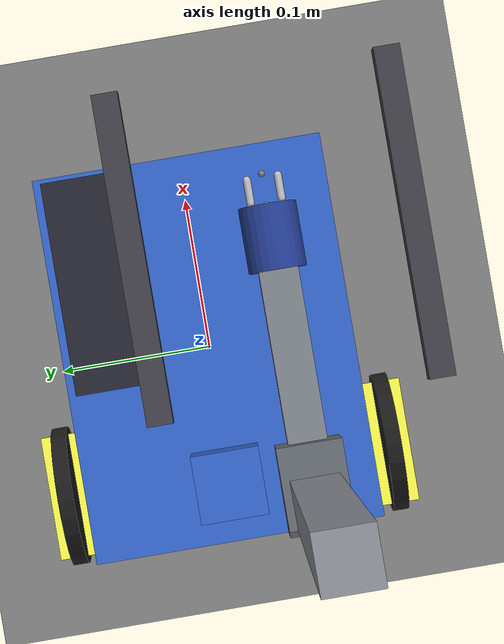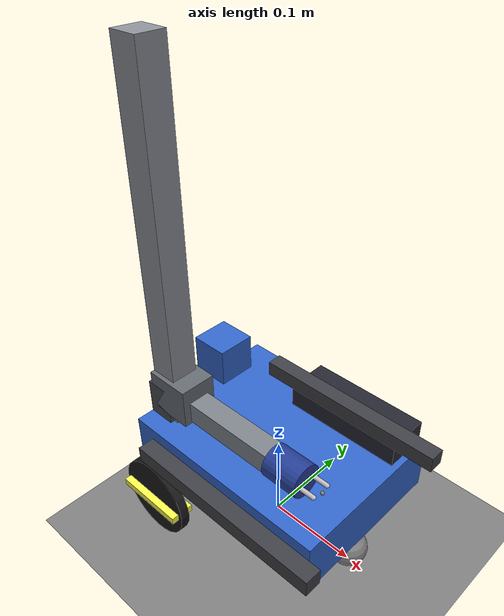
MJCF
<mujoco>

  <!-- Needed to fix wheel physics
        https://mujoco.readthedocs.io/en/stable/computation/index.html#numerical-integration
  -->
  <option integrator="implicitfast"/>

  <include file="pluggybot.xml" />

  <worldbody>

    <!-- directional light -->
    <light pos="0 0 3" dir="0 0 -1"/>

    <!-- The ground -->
    <geom name="floor" type="plane" size="10 10 0.1" rgba="0.5 0.5 0.5 1"/>

  </worldbody>
</mujoco>

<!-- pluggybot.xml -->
<mujocoinclude>
  <visual><global offwidth="1280" offheight="720"/></visual>

  <worldbody>

    <!-- origin at axle height (aka wheel radius) -->
    <body name="pluggybot" pos="0 0 0.045">
      <freejoint />

      <!-- For the gyroscope  -->
      <site name="imu" pos="0 0 0.05"/>

      <geom
        name="chassis"
        type="box"
        size="0.12 0.09 0.03"
        pos="0 0 0.045"
        mass="0.9"
        rgba="0.2 0.4 0.8 1"
      />

      <geom
        name="battery"
        type="box"
        size="0.065 0.023 0.013"
        pos="0.05 0.06 0.092"
        mass="0.40"
        rgba="0.15 0.15 0.2 1"
      />

      <!--  Head  -->
      <body name="head" pos="-0.08 0 0.135">
        <geom
          name="head_mount"
          type="box"
          size="0.02 0.02 0.02"
          pos="0 0 0"
          mass="0.12"
          rgba="0.2 0.4 0.8 1"
        />

        <!--  Cameras  -->
        <!--  Decoding xyaxes="0 -1 0  0 0 1":
                image-right is body −y, image-up is body +z,
                which forces the viewing direction to be body +x
        -->
        <camera name="left_eye" pos="0.03 0.03 0" xyaxes="0 -1 0 0 0 1" fovy="41"/>
        <camera name="right_eye" pos="0.03 -0.03 0" xyaxes="0 -1 0 0 0 1" fovy="41"/>

      </body>

      <body name="left_wheel" pos="-0.08 0.105 0">
        <joint
          name="left_wheel_joint"
          type="hinge"
          axis="0 1 0"
          armature="0.012"
          damping="0.05"
        />
        <geom
          type="cylinder"
          size="0.045 0.005"
          zaxis="0 1 0"
          mass="0.05"
          rgba="0.1 0.1 0.1 1"
        />
        <!-- Spoke - purely visual, to see rotation  -->
        <geom
          type="box"
          size="0.04 0.013 0.004"
          mass="0.001"
          contype="0"
          conaffinity="0"
          rgba="1 1 0.3 1"
        />
      </body>

      <body name="right_wheel" pos="-0.08 -0.105 0">
        <joint
          name="right_wheel_joint"
          type="hinge"
          axis="0 1 0"
          armature="0.012"
          damping="0.05"
        />
        <geom
          type="cylinder"
          size="0.045 0.005"
          zaxis="0 1 0"
          mass="0.05"
          rgba="0.1 0.1 0.1 1"
        />
        <!-- Spoke - purely visual, to see rotation  -->
        <geom
          type="box"
          size="0.04 0.013 0.004"
          mass="0.001"
          contype="0"
          conaffinity="0"
          rgba="1 1 0.3 1"
        />
      </body>

      <geom
        name="caster"
        type="sphere"
        size="0.02"
        pos="0.10 0 -0.025"
        mass="0.02"
        condim="1"
        priority="1"
      />

      <!-- Mast: fixed column + lift motor block at its foot (igus NEMA11
           lead-screw class). Column top at body-local z=0.455. TBD masses. -->
      <geom name="mast" type="box" size="0.015 0.015 0.19"
            pos="-0.10 -0.05 0.265" mass="0.20" rgba="0.55 0.57 0.6 1"/>
      <geom name="lift_motor" type="box" size="0.015 0.02 0.02"
            pos="-0.105 -0.05 0.095" mass="0.15" rgba="0.3 0.3 0.32 1"/>

      <body name="carriage" pos="-0.10 -0.05 0.10">
        <joint name="lift_joint" type="slide" axis="0 0 1" range="0 0.31"
               damping="10"/>
        <geom name="carriage_block" type="box" size="0.025 0.02 0.022"
              pos="0.01 0 0.008" mass="0.25" rgba="0.4 0.42 0.45 1"/>

        <geom name="prong_l" type="box" size="0.10 0.008 0.008"
              pos="0.16 0.085 0.02" mass="0.01" friction="1.5" rgba="0.25 0.25 0.28 1"/>
        <geom name="prong_r" type="box" size="0.10 0.008 0.008"
              pos="0.16 -0.085 0.02" mass="0.01" friction="1.5" rgba="0.25 0.25 0.28 1"/>

        <camera name="dock_eye" pos="0.03 0 0.06" xyaxes="0 -1 0 0 0 1" fovy="41"/>

        <!-- Telescoping arm: short tube, 0.20 m stroke. Retracted, the plug
             tip sits at body-local +0.059 — safely behind the +0.12 bumper. -->
        <body name="arm" pos="0 0 0">
          <joint name="arm_joint" type="slide" axis="1 0 0" range="0 0.20"
                 damping="5"/>
          <geom name="arm_tube" type="box" size="0.06 0.012 0.012"
                pos="0.08 0 0" mass="0.12" rgba="0.5 0.52 0.55 1"/>

          <body name="plug" pos="0.14 0 0">
            <joint name="plug_lat_y" type="slide" axis="0 1 0" range="-0.02 0.02"
                   stiffness="150" damping="4" armature="1e-5"/>
            <joint name="plug_lat_z" type="slide" axis="0 0 1" range="-0.02 0.02"
                   stiffness="150" damping="4" armature="1e-5"/>
            <joint name="plug_rot_z" type="hinge" axis="0 0 1" range="-0.35 0.35"
                   stiffness="1.0" damping="0.05" armature="1e-5"/>
            <joint name="plug_rot_y" type="hinge" axis="0 1 0" range="-0.35 0.35"
                   stiffness="1.0" damping="0.05" armature="1e-5"/>
            <geom name="plug_body" type="cylinder" size="0.01775 0.020"
                  zaxis="1 0 0" pos="0.02 0 0" mass="0.05" rgba="0.15 0.25 0.6 1"/>
            <geom name="plug_pin_l" type="capsule" size="0.0024"
                  fromto="0.0424 0.0095 0 0.0566 0.0095 0" mass="0.003"
                  rgba="0.75 0.75 0.78 1"/>
            <geom name="plug_pin_r" type="capsule" size="0.0024"
                  fromto="0.0424 -0.0095 0 0.0566 -0.0095 0" mass="0.003"
                  rgba="0.75 0.75 0.78 1"/>
            <site name="plug_face" pos="0.04 0 0" size="0.002"/>
            <site name="plug_tip" pos="0.059 0 0" size="0.002"/>
          </body>
        </body>
      </body>

    </body>
  </worldbody>

  <!-- The arm tube passes beside the mast on a carriage bracket in the real
       igus unit; as primitives on one axis they would interpenetrate. -->
  <contact>
    <exclude body1="pluggybot" body2="arm"/>
  </contact>

  <actuator>
    <velocity
      name="left_motor"
      joint="left_wheel_joint"
      kv="0.5"
      ctrlrange="-21 21"
      forcerange="-2.06 2.06"
    />
    <velocity
      name="right_motor"
      joint="right_wheel_joint"
      kv="0.5"
      ctrlrange="-21 21"
      forcerange="-2.06 2.06"
    />
    <!-- Lift + arm: position servos (a stepper lead-screw IS a position
         device). forcerange from the igus DLE-LA-0001 spec: 50 N thrust.
         ctrl is the joint target in meters. -->
    <position
      name="lift"
      joint="lift_joint"
      kp="1200"
      kv="60"
      ctrlrange="0 0.31"
      forcerange="-50 50"
    />
    <position
      name="arm"
      joint="arm_joint"
      kp="1200"
      kv="60"
      ctrlrange="0 0.20"
      forcerange="-50 50"
    />
  </actuator>

  <sensor>
    <gyro name="imu_gyro" site="imu"/>
  </sensor>

</mujocoinclude>
